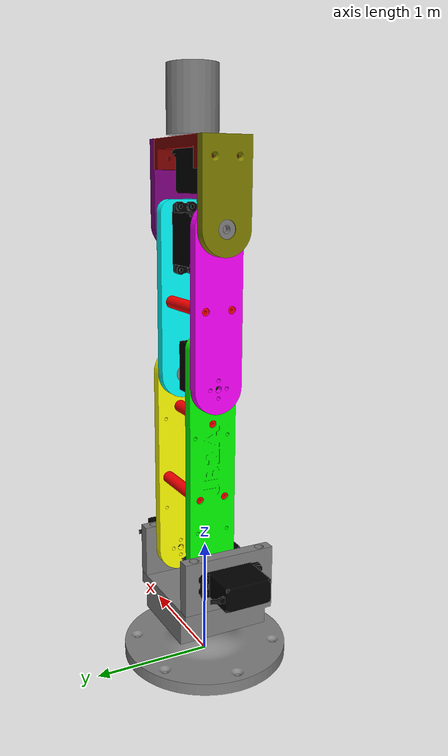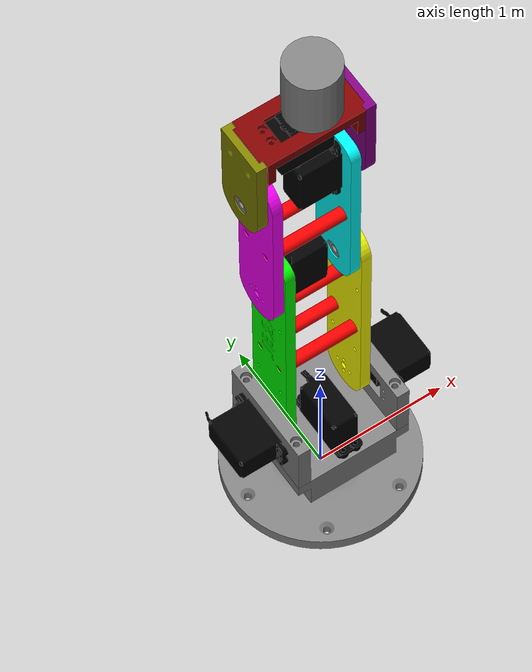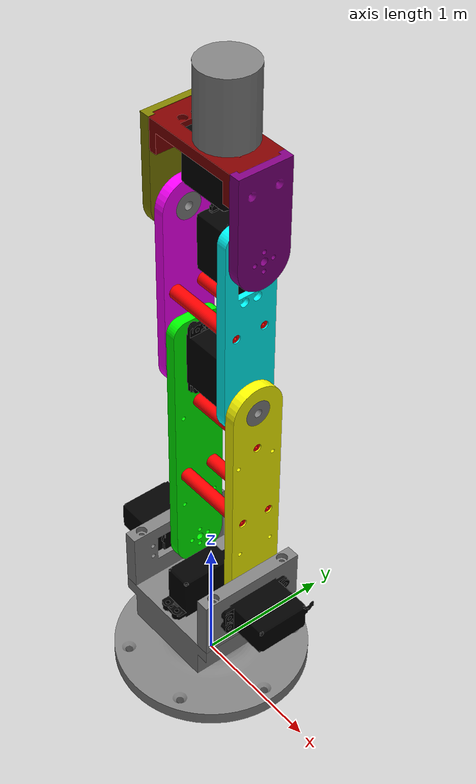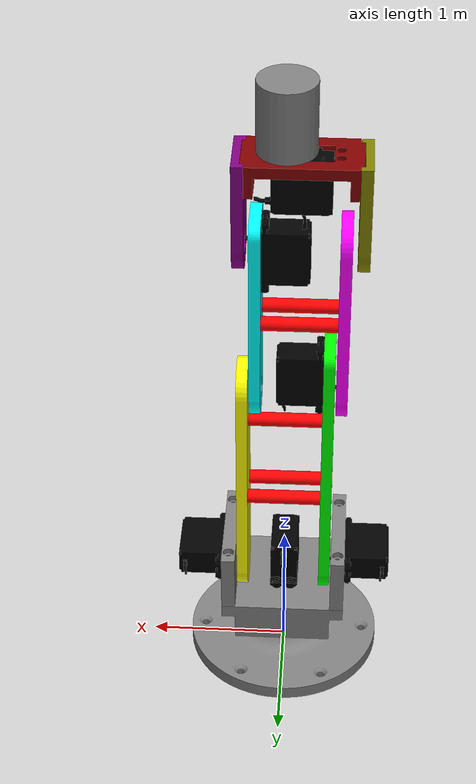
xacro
<?xml version="1.0"?>
<robot name="jb2a" xmlns:xacro="http://ros.org/wiki/xacro">
  <!-- Xacro properties -->
  <xacro:property name="pi" value="3.1415926535897931"/>
  <!-- To increase visibulity in RViz-->
  <xacro:property name="scale" value="10"/>
  <!-- Cange mm measures in meter*scale value -->
  <xacro:property name="scale_mm" value="${1e-3*scale}"/>
  <xacro:property name="scale_mm2" value="${scale_mm*scale_mm}"/>
  <xacro:property name="gtoKg" value="1e-3"/>
  <xacro:property name="angle_lim_low" value="${-8/18*pi}"/>
  <xacro:property name="angle_lim_high" value="${8/18*pi}"/>

  <!-- Used for every servo except the first one as it is the child in the joint relation -->
  <xacro:macro name="servo" params="name">
    <link name="${name}">
      <inertial>
        <mass value="${60*gtoKg}" />
        <inertia  ixx="${9485.10*scale_mm2*gtoKg}"
                  ixy="${85.09*scale_mm2*gtoKg}"
                  ixz="${0.03*scale_mm2*gtoKg}"
                  iyy="${10669.07*scale_mm2*gtoKg}"
                  iyz="${-0.04*scale_mm2*gtoKg}"
                  izz="${16223.61*scale_mm2*gtoKg}" />
      </inertial>

      <visual>
        <geometry>
          <mesh filename="package://jb2a_description/meshes/Servo.STL" scale="${scale} ${scale} ${scale}"/>
        </geometry>
        <material name="black"/>
        <origin rpy="0 0 0" xyz="0 0 0"/>
      </visual>

      <collision>
        <geometry>
          <mesh filename="package://jb2a_description/meshes/Servo.STL" scale="${scale} ${scale} ${scale}"/>
        </geometry>
        <origin rpy="0 0 0" xyz="0 0 0"/>
      </collision>

    </link>

  </xacro:macro>

  <xacro:macro name="servo_joint" params="parent arm child offset:=37.5">
    <joint name="${parent}_${arm}_joint" type="revolute">
      <parent link="${parent}"/>
      <child link="${child}"/>
      <origin rpy="0 0 0" xyz="${10.09*scale_mm} ${(offset+10)*scale_mm} ${0*scale_mm}"/>
      <axis xyz="0 1 0"/>
      <limit effort="1000.0" lower="${angle_lim_low}" upper="${angle_lim_high}" velocity="0.5"/>
      <dynamics friction="0.7"/>
    </joint>

    <transmission name="${parent}_${child}_trans">
      <type> transmission_interface/SimpleTransmission</type>
      <joint name="${parent}_${arm}_joint">
	       <hardwareInterface>hardware_interface/EffortJointInterface</hardwareInterface>
      </joint>
      <actuator name="${parent}_${child}_servo">
	       <hardwareInterface>hardware_interface/EffortJointInterface</hardwareInterface>
      </actuator>
    </transmission>
  </xacro:macro>

  <xacro:macro name="servo_mimic" params="parent child mimic multiplier">
    <joint name="${parent}_${child}_joint" type="revolute">
      <parent link="${parent}"/>
      <child link="${child}"/>
      <origin rpy="0 0 0" xyz="${10.09*scale_mm} ${(37.5+10)*scale_mm} ${0*scale_mm}"/>
      <axis xyz="0 1 0"/>
      <limit effort="1000.0" lower="${angle_lim_low}" upper="${angle_lim_high}" velocity="0.5"/>
      <mimic joint="${mimic}" multiplier="${multiplier}" offset="0"/>
      <dynamics friction="0.7"/>
    </joint>
  </xacro:macro>

  <xacro:macro name="piece13" params="name">
    <link name="${name}">
      <inertial>
        <origin xyz="${0*scale_mm} ${0*scale_mm} ${0*scale_mm}" />
        <mass value="${5*gtoKg}" />
        <inertia  ixx="${1424.75*scale_mm2*gtoKg}"
                  ixy="${0*scale_mm2*gtoKg}"
                  ixz="${0*scale_mm2*gtoKg}"
                  iyy="${61.71*scale_mm2*gtoKg}"
                  iyz="${0*scale_mm2*gtoKg}"
                  izz="${1424.75*scale_mm2*gtoKg}" />
      </inertial>

      <visual>
        <geometry>
          <mesh filename="package://jb2a_description/meshes/Piece13.STL" scale="${scale} ${scale} ${scale}"/>
        </geometry>
        <material name="red"/>
        <origin rpy="0 0 0" xyz="0 0 0"/>
      </visual>

      <collision>
        <geometry>
          <cylinder length="${65*scale_mm}" radius="${3*scale_mm}" scale="${scale} ${scale} ${scale}"/>
        </geometry>
        <origin rpy="${pi/2} 0 0" xyz="0 0 0"/>
      </collision>
    </link>
  </xacro:macro>

  <xacro:macro name="radialBearing" params="name">
    <link name="${name}">
      <inertial>
        <origin xyz="${0*scale_mm} ${0*scale_mm} ${0*scale_mm}" />
        <mass value="${30*gtoKg}" />
        <inertia  ixx="${278.13*scale_mm2*gtoKg}"
                  ixy="${0*scale_mm2*gtoKg}"
                  ixz="${0*scale_mm2*gtoKg}"
                  iyy="${278.13*scale_mm2*gtoKg}"
                  iyz="${0*scale_mm2*gtoKg}"
                  izz="${496.25*scale_mm2*gtoKg}" />
      </inertial>

      <visual>
        <geometry>
          <mesh filename="package://jb2a_description/meshes/radialBearing.STL" scale="${scale} ${scale} ${scale}"/>
        </geometry>
        <material name="grey"/>
        <origin rpy="-${pi/2} 0 0" xyz="0 0 0"/>
      </visual>

      <collision>
        <geometry>
          <mesh filename="package://jb2a_description/meshes/radialBearing.STL" scale="${scale} ${scale} ${scale}"/>
        </geometry>
        <origin rpy="-${pi/2} 0 0" xyz="0 0 0"/>
      </collision>
    </link>
  </xacro:macro>

  <xacro:macro name="radialBearing_joint" params="parent child mimic multiplier offset=10">
    <joint name="${parent}_${child}_joint" type="revolute">
      <parent link="${parent}"/>
      <child link="${child}"/>
      <origin rpy="0 ${-pi/2} 0" xyz="0 ${offset*scale_mm} 0"/>
      <axis xyz="0 1 0"/>
      <mimic joint="${mimic}" multiplier="${multiplier}" offset="0"/>
      <limit effort="1000.0" lower="${angle_lim_low}" upper="${angle_lim_high}" velocity="0.5"/>
      <dynamics friction="0.7"/>
    </joint>
  </xacro:macro>

  <!-- Import all Gazebo-customization elements, including Gazebo colors -->
  <xacro:include filename="$(find jb2a_description)/urdf/jb2a.gazebo" />
  <!-- Import Rviz colors -->
  <xacro:include filename="$(find jb2a_description)/urdf/materials.xacro" />

  <!-- Fixed Frame -->
    <link name="world"/>

    <joint name="fixed" type="fixed">
      <parent link="world"/>
      <child link="base_link"/>
    </joint>

  <!-- Base -->
    <link name="base_link">

      <inertial>
        <origin xyz="0 0 ${-10.7*scale_mm}" rpy="0 0 0"/>
        <mass value="${130*gtoKg}" />
        <inertia  ixx="${143.90*scale_mm2}"
                  ixy="${0*scale_mm2}"
                  ixz="${0*scale_mm2}"
                  iyy="${143.90*scale_mm2}"
                  iyz="${0*scale_mm2}"
                  izz="${254.21*scale_mm2}" />
      </inertial>

      <visual>
        <geometry>
          <mesh filename="package://jb2a_description/meshes/base.STL" scale="${scale} ${scale} ${scale}"/>
        </geometry>
        <material name="grey"/>
        <origin rpy="${pi} 0 0" xyz="0 0 0"/>
      </visual>

      <collision>
        <geometry>
          <mesh filename="package://jb2a_description/meshes/base.STL" scale="${scale} ${scale} ${scale}"/>
        </geometry>
        <origin rpy="${pi} 0 0" xyz="0 0 0"/>
      </collision>

    </link>

    <link name="ball_bearings1">
      <inertial>
        <origin xyz="0 0 0" />
        <mass value="${30*gtoKg}" />
        <inertia  ixx="${8192.50*scale_mm2*gtoKg}"
                  ixy="${0*scale_mm2*gtoKg}"
                  ixz="${0*scale_mm2*gtoKg}"
                  iyy="${8192.50*scale_mm2*gtoKg}"
                  iyz="${0*scale_mm2*gtoKg}"
                  izz="${16140.0*scale_mm2*gtoKg}" />
      </inertial>

      <visual>
        <geometry>
          <mesh filename="package://jb2a_description/meshes/bearings.STL" scale="${scale} ${scale} ${scale}"/>
        </geometry>
        <material name="black"/>
        <origin rpy="0 0 0" xyz="0 0 0"/>
      </visual>

      <collision>
        <geometry>
          <mesh filename="package://jb2a_description/meshes/bearings.STL" scale="${scale} ${scale} ${scale}"/>
        </geometry>
        <origin rpy="0 0 0" xyz="0 0 0"/>
      </collision>

    </link>

    <joint name="base_bearings_joint" type="fixed">
      <parent link="base_link"/>
      <child link="ball_bearings1"/>
      <origin rpy="0 0 0" xyz="0 0 ${38.5*scale_mm}"/>
    </joint>

    <link name="ball_bearings2">
      <inertial>
        <origin xyz="0 0 0" />
        <mass value="${30*gtoKg}" />
        <inertia  ixx="${8192.50*scale_mm2*gtoKg}"
                  ixy="${0*scale_mm2*gtoKg}"
                  ixz="${0*scale_mm2*gtoKg}"
                  iyy="${8192.50*scale_mm2*gtoKg}"
                  iyz="${0*scale_mm2*gtoKg}"
                  izz="${16140.0*scale_mm2*gtoKg}" />
      </inertial>

      <visual>
        <geometry>
          <mesh filename="package://jb2a_description/meshes/bearings.STL" scale="${scale} ${scale} ${scale}"/>
        </geometry>
        <material name="black"/>
        <origin rpy="0 0 0" xyz="0 0 0"/>
      </visual>

      <collision>
        <geometry>
          <mesh filename="package://jb2a_description/meshes/bearings.STL" scale="${scale} ${scale} ${scale}"/>
        </geometry>
        <origin rpy="0 0 0" xyz="0 0 0"/>
      </collision>
    </link>

    <joint name="base_bearings2_joint" type="fixed">
      <parent link="base_link"/>
      <child link="ball_bearings2"/>
      <origin rpy="0 0 0" xyz="0 0 ${45.5*scale_mm}"/>
    </joint>
  <!-- End Base -->

  <!-- rotational ensemble -->
    <link name="servo1">
      <inertial>
        <origin xyz="${(0.16-10.09)*scale_mm} ${19.77*scale_mm} ${0*scale_mm}" />
        <mass value="${60*gtoKg}" />
        <inertia  ixx="${9485.10*scale_mm2*gtoKg}"
                  ixy="${85.09*scale_mm2*gtoKg}"
                  ixz="${0.03*scale_mm2*gtoKg}"
                  iyy="${10669.07*scale_mm2*gtoKg}"
                  iyz="${-0.04*scale_mm2*gtoKg}"
                  izz="${16223.61*scale_mm2*gtoKg}" />
      </inertial>

      <visual>
        <geometry>
          <mesh filename="package://jb2a_description/meshes/Servo.STL" scale="${scale} ${scale} ${scale}"/>
        </geometry>
        <material name="black"/>
        <origin rpy="0 0 0" xyz="${-10.09*scale_mm} 0 0"/>
      </visual>

      <collision>
        <geometry>
          <mesh filename="package://jb2a_description/meshes/Servo.STL" scale="${scale} ${scale} ${scale}"/>
        </geometry>
        <origin rpy="0 0 0" xyz="${-10.09*scale_mm} 0 0"/>
      </collision>
    </link>

    <joint name="base_servo1_joint" type="revolute">
      <parent link="base_link"/>
      <child link="servo1"/>
      <origin rpy="${-pi/2} 0 ${pi/2}" xyz="0 0 ${(95.5)*scale_mm}"/>
      <axis xyz="0 1 0"/>
      <limit effort="1000.0" lower="${angle_lim_low}" upper="${angle_lim_high}" velocity="0.5"/>
      <dynamics friction="0.7"/>
    </joint>

    <transmission name="base_servo1_trans">
      <type> transmission_interface/SimpleTransmission</type>
      <joint name="base_servo1_joint">
	       <hardwareInterface>hardware_interface/EffortJointInterface</hardwareInterface>
      </joint>
      <actuator name="base_servo1_servo">
	       <hardwareInterface>hardware_interface/EffortJointInterface</hardwareInterface>
      </actuator>
    </transmission>

    <link name="piece100">
      <inertial>
        <origin xyz="0 ${1.04*scale_mm} ${12.83*scale_mm}" />
        <mass value="${95*gtoKg}" />
        <inertia  ixx="${69928.89*scale_mm2*gtoKg}"
                  ixy="${0.00*scale_mm2*gtoKg}"
                  ixz="${0.00*scale_mm2*gtoKg}"
                  iyy="${69691.88*scale_mm2*gtoKg}"
                  iyz="${-269.74*scale_mm2*gtoKg}"
                  izz="${124936.91*scale_mm2*gtoKg}" />
      </inertial>

      <visual>
        <geometry>
          <mesh filename="package://jb2a_description/meshes/Piece100.STL" scale="${scale} ${scale} ${scale}"/>
        </geometry>
        <material name="grey"/>
        <origin rpy="0 0 0" xyz="0 0 0"/>
      </visual>

      <collision>
        <geometry>
          <mesh filename="package://jb2a_description/meshes/Piece100.STL" scale="${scale} ${scale} ${scale}"/>
        </geometry>
        <origin rpy="0 0 0" xyz="0 0 0"/>
      </collision>
    </link>

    <joint name="piece100_servo1_joint" type="fixed">
      <parent link="servo1"/>
      <child link="piece100"/>
      <origin rpy="${-pi/2} ${-pi/2} 0" xyz="0 ${32.5*scale_mm} 0"/>
    </joint>

    <link name="piece11">
      <inertial>
        <origin xyz="${-1.15*scale_mm} ${-0.18*scale_mm} ${-0.04*scale_mm}" />
        <mass value="${20*gtoKg}" />
        <inertia  ixx="${12919.36*scale_mm2*gtoKg}"
                  ixy="${-13.18*scale_mm2*gtoKg}"
                  ixz="${-3.14*scale_mm2*gtoKg}"
                  iyy="${4390.09*scale_mm2*gtoKg}"
                  iyz="${-0.59*scale_mm2*gtoKg}"
                  izz="${16960.47*scale_mm2*gtoKg}" />
      </inertial>

      <visual>
        <geometry>
          <mesh filename="package://jb2a_description/meshes/Piece11.STL" scale="${scale} ${scale} ${scale}"/>
        </geometry>
        <material name="grey"/>
        <origin rpy="0 0 0" xyz="0 0 0"/>
      </visual>

      <collision>
        <geometry>
          <mesh filename="package://jb2a_description/meshes/Piece11.STL" scale="${scale} ${scale} ${scale}"/>
        </geometry>
        <origin rpy="0 0 0" xyz="0 0 0"/>
      </collision>
    </link>

    <joint name="piece100_piece11_joint" type="fixed">
      <parent link="piece100"/>
      <child link="piece11"/>
      <origin rpy="0 ${pi/2} 0" xyz="${40*scale_mm} 0 ${-22.5*scale_mm}"/>
    </joint>

    <link name="piece11sym">
      <inertial>
        <origin xyz="${-1.15*scale_mm} ${-0.18*scale_mm} ${-0.04*scale_mm}" />
        <mass value="${20*gtoKg}" />
        <inertia  ixx="${12919.36*scale_mm2*gtoKg}"
                  ixy="${-13.18*scale_mm2*gtoKg}"
                  ixz="${-3.14*scale_mm2*gtoKg}"
                  iyy="${4390.09*scale_mm2*gtoKg}"
                  iyz="${-0.59*scale_mm2*gtoKg}"
                  izz="${16960.47*scale_mm2*gtoKg}" />
      </inertial>

      <visual>
        <geometry>
          <mesh filename="package://jb2a_description/meshes/Piece11sym.STL" scale="${scale} ${scale} ${scale}"/>
        </geometry>
        <material name="grey"/>
        <origin rpy="0 0 0" xyz="0 0 0"/>
      </visual>

      <collision>
        <geometry>
          <mesh filename="package://jb2a_description/meshes/Piece11sym.STL" scale="${scale} ${scale} ${scale}"/>
        </geometry>
        <origin rpy="0 0 0" xyz="0 0 0"/>
      </collision>

    </link>

    <joint name="piece100_piece11sym_joint" type="fixed">
      <parent link="piece100"/>
      <child link="piece11sym"/>
      <origin rpy="0 ${pi/2} 0" xyz="${-40*scale_mm} 0 ${-22.5*scale_mm}"/>
    </joint>

    <xacro:servo name="servo2"/>

    <joint name="piece11_servo2_joint" type="fixed">
      <parent link="piece11"/>
      <child link="servo2"/>
      <origin rpy="${-pi/2} 0 ${pi/2}" xyz="${2.5*scale_mm} ${0.5*scale_mm} ${37.5*scale_mm}"/>
    </joint>

    <xacro:servo name="servo3"/>

    <joint name="piece11sym_servo3_joint" type="fixed">
      <parent link="piece11sym"/>
      <child link="servo3"/>
      <origin rpy="${pi/2} 0 ${pi/2}" xyz="${2.5*scale_mm} ${0.5*scale_mm} ${-37.5*scale_mm}"/>
    </joint>

  <!-- End rotation ensemble -->

  <!-- Arm1 -->
    <link name="arm1-piece12">
      <inertial>
        <origin rpy="${pi/2} ${-pi/2} 0" xyz="${-0.05*scale_mm} ${0.00*scale_mm} ${-76.35*scale_mm}"/>
        <mass value="${40*gtoKg}" />
        <inertia  ixx="${7471.11*scale_mm2*gtoKg}"
                  ixy="${-4.92*scale_mm2*gtoKg}"
                  ixz="${-46.60*scale_mm2*gtoKg}"
                  iyy="${173663.35*scale_mm2*gtoKg}"
                  iyz="${0.27*scale_mm2*gtoKg}"
                  izz="${180608.09*scale_mm2*gtoKg}" />
      </inertial>

      <visual>
        <geometry>
          <mesh filename="package://jb2a_description/meshes/Piece12.STL" scale="${scale} ${scale} ${scale}"/>
        </geometry>
        <material name="green"/>
        <origin rpy="${pi/2} ${-pi/2} 0" xyz="0 0 ${-160*scale_mm}"/>
      </visual>

      <collision>
        <geometry>
          <mesh filename="package://jb2a_description/meshes/Piece12.STL" scale="${scale} ${scale} ${scale}"/>
        </geometry>
        <origin rpy="${pi/2} ${-pi/2} 0" xyz="0 0 ${-160*scale_mm}"/>
      </collision>
    </link>

    <xacro:servo_joint parent="servo2" arm="arm1" child="arm1-piece12"/>

    <link name="arm1-piece15">
      <inertial>
        <origin rpy="${pi/2} ${pi/2} 0" xyz="${-0.04*scale_mm} ${0.00*scale_mm} ${81.56*scale_mm}" />
        <mass value="${40*gtoKg}" />
        <inertia  ixx="${5561.55*scale_mm2*gtoKg}"
                  ixy="${-3.55*scale_mm2*gtoKg}"
                  ixz="${-41.58*scale_mm2*gtoKg}"
                  iyy="${117353.89*scale_mm2*gtoKg}"
                  iyz="${0.00*scale_mm2*gtoKg}"
                  izz="${122490.38*scale_mm2*gtoKg}" />
      </inertial>

      <visual>
        <geometry>
          <mesh filename="package://jb2a_description/meshes/Piece15.STL" scale="${scale} ${scale} ${scale}"/>
        </geometry>
        <material name="cyan"/>
        <origin rpy="${pi/2} ${pi/2} 0" xyz="0 0 ${160*scale_mm}"/>
      </visual>

      <collision>
        <geometry>
          <mesh filename="package://jb2a_description/meshes/Piece15.STL" scale="${scale} ${scale} ${scale}"/>
        </geometry>
        <origin rpy="${pi/2} ${pi/2} 0" xyz="0 0 ${160*scale_mm}"/>
      </collision>
    </link>

    <xacro:servo_mimic parent="servo3" child="arm1-piece15" mimic="servo2_arm1-piece12_joint" multiplier="-1"/>

    <xacro:piece13 name="arm1-piece13-1"/>

    <joint name="arm1-piece12_arm1-piece13-1_joint" type="fixed">
      <parent link="arm1-piece12"/>
      <child link="arm1-piece13-1"/>
      <origin rpy="0 0 0" xyz="0 ${30*scale_mm} ${-130*scale_mm}"/>
    </joint>

    <xacro:piece13 name="arm1-piece13-2"/>

    <joint name="arm1-piece12_arm1-piece13-2_joint" type="fixed">
      <parent link="arm1-piece12"/>
      <child link="arm1-piece13-2"/>
      <origin rpy="0 0 0" xyz="${11*scale_mm} ${30*scale_mm} ${-68*scale_mm}"/>
    </joint>

    <xacro:piece13 name="arm1-piece13-3"/>

    <joint name="arm1-piece12_arm1-piece13-3_joint" type="fixed">
      <parent link="arm1-piece12"/>
      <child link="arm1-piece13-3"/>
      <origin rpy="0 0 0" xyz="${-11*scale_mm} ${30*scale_mm} ${-68*scale_mm}"/>
    </joint>

    <xacro:radialBearing name="radialBearing1"/>

    <joint name="arm1-piece15_radialBearing1_joint" type="fixed">
      <parent link="arm1-piece15"/>
      <child link="radialBearing1"/>
      <origin rpy="0 0 0" xyz="0 ${-1*scale_mm} ${160*scale_mm}"/>
    </joint>

    <xacro:servo name="servo4"/>

    <joint name="arm1-piece12_servo4_joint" type="fixed">
      <parent link="arm1-piece12"/>
      <child link="servo4"/>
      <origin rpy="${pi} ${-pi/2} 0" xyz="0 ${(60-23.5)*scale_mm} ${-170.09*scale_mm}"/>
    </joint>

  <!-- End Arm1 -->

  <!-- Arm2 -->
    <link name="arm2-piece16">
      <inertial>
        <origin rpy="${pi/2} 0 0" xyz="${(-120+61.38)*scale_mm} ${0*scale_mm} ${-0.04*scale_mm}" />
        <mass value="${35*gtoKg}" />
        <inertia  ixx="${4855.15*scale_mm2*gtoKg}"
                  ixy="${0*scale_mm2*gtoKg}"
                  ixz="${-34.37*scale_mm2*gtoKg}"
                  iyy="${64452.74*scale_mm2*gtoKg}"
                  iyz="${0*scale_mm2*gtoKg}"
                  izz="${68936.39*scale_mm2*gtoKg}" />
      </inertial>

      <visual>
        <geometry>
          <mesh filename="package://jb2a_description/meshes/Piece16.STL" scale="${scale} ${scale} ${scale}"/>
        </geometry>
        <material name="pink"/>
        <origin rpy="${pi/2} 0 0" xyz="${-120*scale_mm} 0 0"/>
      </visual>

      <collision>
        <geometry>
          <mesh filename="package://jb2a_description/meshes/Piece16.STL" scale="${scale} ${scale} ${scale}"/>
        </geometry>
        <origin rpy="${pi/2} 0 0" xyz="${-120*scale_mm} 0 0"/>
      </collision>
    </link>

    <xacro:servo_joint parent="servo4" arm="arm2" child="arm2-piece16" offset="39.5"/>

    <xacro:radialBearing name="radialBearing3"/>

    <joint name="arm2-piece16_radialBearing3_joint" type="fixed">
      <parent link="arm2-piece16"/>
      <child link="radialBearing3"/>
      <origin rpy="0 0 0" xyz="${-120*scale_mm} ${-5*scale_mm} 0"/>
    </joint>

    <xacro:radialBearing name="radialBearing2"/>

    <xacro:radialBearing_joint parent="radialBearing1" child="radialBearing2" mimic="servo4_arm2-piece16_joint" multiplier="1"/>

    <link name="arm2-piece14">
      <inertial>
        <origin rpy="0 ${pi/2} ${-pi/2}" xyz="0 0 ${(120-64.05)*scale_mm}" />
        <mass value="${30*gtoKg}" />
        <inertia  ixx="${4703.38*scale_mm2*gtoKg}"
                  ixy="${0*scale_mm2*gtoKg}"
                  ixz="${-2.07*scale_mm2*gtoKg}"
                  iyy="${54489.25*scale_mm2*gtoKg}"
                  iyz="${0*scale_mm2*gtoKg}"
                  izz="${58871.61*scale_mm2*gtoKg}" />
      </inertial>

      <visual>
        <geometry>
          <mesh filename="package://jb2a_description/meshes/Piece14.STL" scale="${scale} ${scale} ${scale}"/>
        </geometry>
        <material name="turcoise"/>
        <origin rpy="0 ${pi/2} ${-pi/2}" xyz="0 0 ${120*scale_mm}"/>
      </visual>

      <collision>
        <geometry>
          <mesh filename="package://jb2a_description/meshes/Piece14.STL" scale="${scale} ${scale} ${scale}"/>
        </geometry>
        <origin rpy="0 ${pi/2} ${-pi/2}" xyz="0 0 ${120*scale_mm}"/>
      </collision>

    </link>

    <joint name="arm1-piece14_radialBearing2_joint" type="fixed">
      <parent link="radialBearing2"/>
      <child link="arm2-piece14"/>
      <origin rpy="0 ${pi/2} 0" xyz="0 ${0*scale_mm} 0"/>
    </joint>

    <xacro:servo name="servo5"/>

    <joint name="arm2-piece14_servo5_joint" type="fixed">
      <parent link="arm2-piece14"/>
      <child link="servo5"/>
      <origin rpy="${pi} ${-pi/2} 0" xyz="0 ${36.50*scale_mm} ${(120-10)*scale_mm}"/>
    </joint>

    <xacro:piece13 name="arm2-piece13-1"/>

    <joint name="arm2-piece14_arm2-piece13-1_joint" type="fixed">
      <parent link="arm2-piece14"/>
      <child link="arm2-piece13-1"/>
      <origin rpy="0 0 0" xyz="${-11*scale_mm} ${30*scale_mm} ${60*scale_mm}"/>
    </joint>

    <xacro:piece13 name="arm2-piece13-2"/>

    <joint name="arm2-piece14_arm2-piece13-2_joint" type="fixed">
      <parent link="arm2-piece14"/>
      <child link="arm2-piece13-2"/>
      <origin rpy="0 0 0" xyz="${11*scale_mm} ${30*scale_mm} ${60*scale_mm}"/>
    </joint>
  <!-- End Arm2 -->

  <!-- Arm3 -->
    <link name="arm3-piece17">
      <inertial>
        <origin rpy="${-pi/2} 0 ${pi}" xyz="${23.15*scale_mm} ${0*scale_mm} ${-0.27*scale_mm}" />
        <mass value="${17*gtoKg}" />
        <inertia  ixx="${2387.42*scale_mm2*gtoKg}"
                  ixy="${0*scale_mm2*gtoKg}"
                  ixz="${78.26*scale_mm2*gtoKg}"
                  iyy="${8941.61*scale_mm2*gtoKg}"
                  iyz="${0*scale_mm2*gtoKg}"
                  izz="${11160.24*scale_mm2*gtoKg}" />
      </inertial>

      <visual>
        <geometry>
          <mesh filename="package://jb2a_description/meshes/Piece17.STL" scale="${scale} ${scale} ${scale}"/>
        </geometry>
        <material name="pink_light"/>
        <origin rpy="${-pi/2} 0 ${pi}" xyz="0 0 0"/>
      </visual>

      <collision>
        <geometry>
          <mesh filename="package://jb2a_description/meshes/Piece17.STL" scale="${scale} ${scale} ${scale}"/>
        </geometry>
        <origin rpy="${-pi/2} 0 ${pi}" xyz="0 0 0"/>
      </collision>
    </link>

    <xacro:servo_joint parent="servo5" arm="arm3" child="arm3-piece17"/>

    <xacro:radialBearing name="radialBearing4"/>

    <xacro:radialBearing_joint parent="radialBearing3" child="radialBearing4" mimic="servo5_arm3-piece17_joint" multiplier="-1" offset="12.5"/>

    <link name="arm3-piece18">
      <inertial>
        <origin rpy="${-pi/2} 0 ${pi}" xyz="${-24.25*scale_mm} ${0*scale_mm} ${-0.25*scale_mm}" />
        <mass value="${17*gtoKg}" />
        <inertia  ixx="${2482.79*scale_mm2*gtoKg}"
                  ixy="${0*scale_mm2*gtoKg}"
                  ixz="${-91.55*scale_mm2*gtoKg}"
                  iyy="${8895.24*scale_mm2*gtoKg}"
                  iyz="${0*scale_mm2*gtoKg}"
                  izz="${11204.45*scale_mm2*gtoKg}" />
      </inertial>

      <visual>
        <geometry>
          <mesh filename="package://jb2a_description/meshes/Piece18.STL" scale="${scale} ${scale} ${scale}"/>
        </geometry>
        <material name="cyan_light"/>
        <origin rpy="${-pi/2} 0 ${pi}" xyz="0 0 0"/>
      </visual>

      <collision>
        <geometry>
          <mesh filename="package://jb2a_description/meshes/Piece18.STL" scale="${scale} ${scale} ${scale}"/>
        </geometry>
        <origin rpy="${-pi/2} 0 ${pi}" xyz="0 0 0"/>
      </collision>
    </link>

    <joint name="radialBearing4_arm3-piece18_joint" type="fixed">
      <parent link="radialBearing4"/>
      <child link="arm3-piece18"/>
      <origin rpy="0 ${pi/2} 0" xyz="0 0 0"/>
    </joint>

    <link name="arm3-piece19">
      <inertial>
        <origin xyz="${10*scale_mm} ${0*scale_mm} ${0.01*scale_mm}" />
        <mass value="${22*gtoKg}" />
        <inertia  ixx="${4235.92*scale_mm2*gtoKg}"
                  ixy="${0*scale_mm2*gtoKg}"
                  ixz="${0*scale_mm2*gtoKg}"
                  iyy="${19380.83*scale_mm2*gtoKg}"
                  iyz="${0*scale_mm2*gtoKg}"
                  izz="${21869.12*scale_mm2*gtoKg}" />
      </inertial>

      <visual>
        <geometry>
          <mesh filename="package://jb2a_description/meshes/Piece19.STL" scale="${scale} ${scale} ${scale}"/>
        </geometry>
        <material name="red_light"/>
        <origin rpy="0 0 0" xyz="0 0 0"/>
      </visual>

      <collision>
        <geometry>
          <mesh filename="package://jb2a_description/meshes/Piece19.STL" scale="${scale} ${scale} ${scale}"/>
        </geometry>
        <origin rpy="0 0 0" xyz="0 0 0"/>
      </collision>

    </link>

    <joint name="arm3-piece17_arm3-piece19_joint" type="fixed">
      <parent link="arm3-piece17"/>
      <child link="arm3-piece19"/>
      <origin rpy="${-pi/2} 0 ${-pi/2}" xyz="${57*scale_mm} ${-31*scale_mm} ${0*scale_mm}"/>
    </joint>

    <xacro:servo name="servo6"/>

    <joint name="arm2-piece14_servo6_joint" type="fixed">
      <parent link="arm3-piece19"/>
      <child link="servo6"/>
      <origin rpy="${pi/2} 0 ${pi}" xyz="${10*scale_mm} 0 ${-32.50*scale_mm}"/>
    </joint>
   <!-- End Arm4 -->

   <!-- Simple hand -->

    <link name="fakeHand">
      <inertial>
        <origin rpy="${pi/2} 0 0" xyz="${0*scale_mm} ${25*scale_mm} ${0*scale_mm}" />
        <mass value="${15*gtoKg}" />
        <inertia  ixx="${1/2*0.5*0.5*1.5e-2 + 1/4*0.2*0.2*1.5e-2}"
                  ixy="${0*scale_mm2*gtoKg}"
                  ixz="${0*scale_mm2*gtoKg}"
                  iyy="${1/2*0.5*0.5*1.5e-2 + 1/4*0.2*0.2*1.5e-2}"
                  iyz="${0*scale_mm2*gtoKg}"
                  izz="${1/2*0.2*0.2*1.5e-2}" />
      </inertial>

      <visual>
         <geometry>
           <cylinder length="${50*scale_mm}" radius="${20*scale_mm}" scale="${scale} ${scale} ${scale}"/>
         </geometry>
         <material name="grey"/>
         <origin rpy="${pi/2} 0 0" xyz="0 ${20*scale_mm} 0"/>
       </visual>

      <collision>
         <geometry>
           <cylinder length="${50*scale_mm}" radius="${20*scale_mm}" scale="${scale} ${scale} ${scale}"/>
         </geometry>
         <origin rpy="${pi/2} 0 0" xyz="0 ${20*scale_mm} 0"/>
       </collision>

     </link>

    <xacro:servo_joint parent="servo6" arm="hand" child="fakeHand"/>
   <!-- End hand -->

</robot>

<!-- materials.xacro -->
<robot>
  <!-- Materials -->
  <material name="black">
      <color rgba="0 0 0 1"/>
  </material>

  <material name="white">
      <color rgba="1 1 1 1"/>
  </material>

  <material name="grey">
      <color rgba="0.5 0.5 0.5 1"/>
  </material>

  <material name="blue">
      <color rgba="0 0 1 1"/>
  </material>

  <material name="blue_light">
      <color rgba="0 0 0.5 1"/>
  </material>

  <material name="red">
      <color rgba="1 0 0 1"/>
  </material>

  <material name="red_light">
      <color rgba="0.5 0 0 1"/>
  </material>

  <material name="green">
      <color rgba="0 1 0 1"/>
  </material>

  <material name="green_light">
      <color rgba="0 0.5 0 1"/>
  </material>

  <material name="cyan">
      <color rgba="1 1 0 1"/>
  </material>

  <material name="cyan_light">
      <color rgba="0.5 0.5 0 1"/>
  </material>

  <material name="turcoise">
      <color rgba="0 1 1 1"/>
  </material>

  <material name="turcoise_light">
      <color rgba="0 0.5 0.5 1"/>
  </material>

  <material name="pink">
      <color rgba="1 0 1 1"/>
  </material>

  <material name="pink_light">
      <color rgba="0.5 0 0.5 1"/>
  </material>

  <!-- End Materials -->

</robot>
